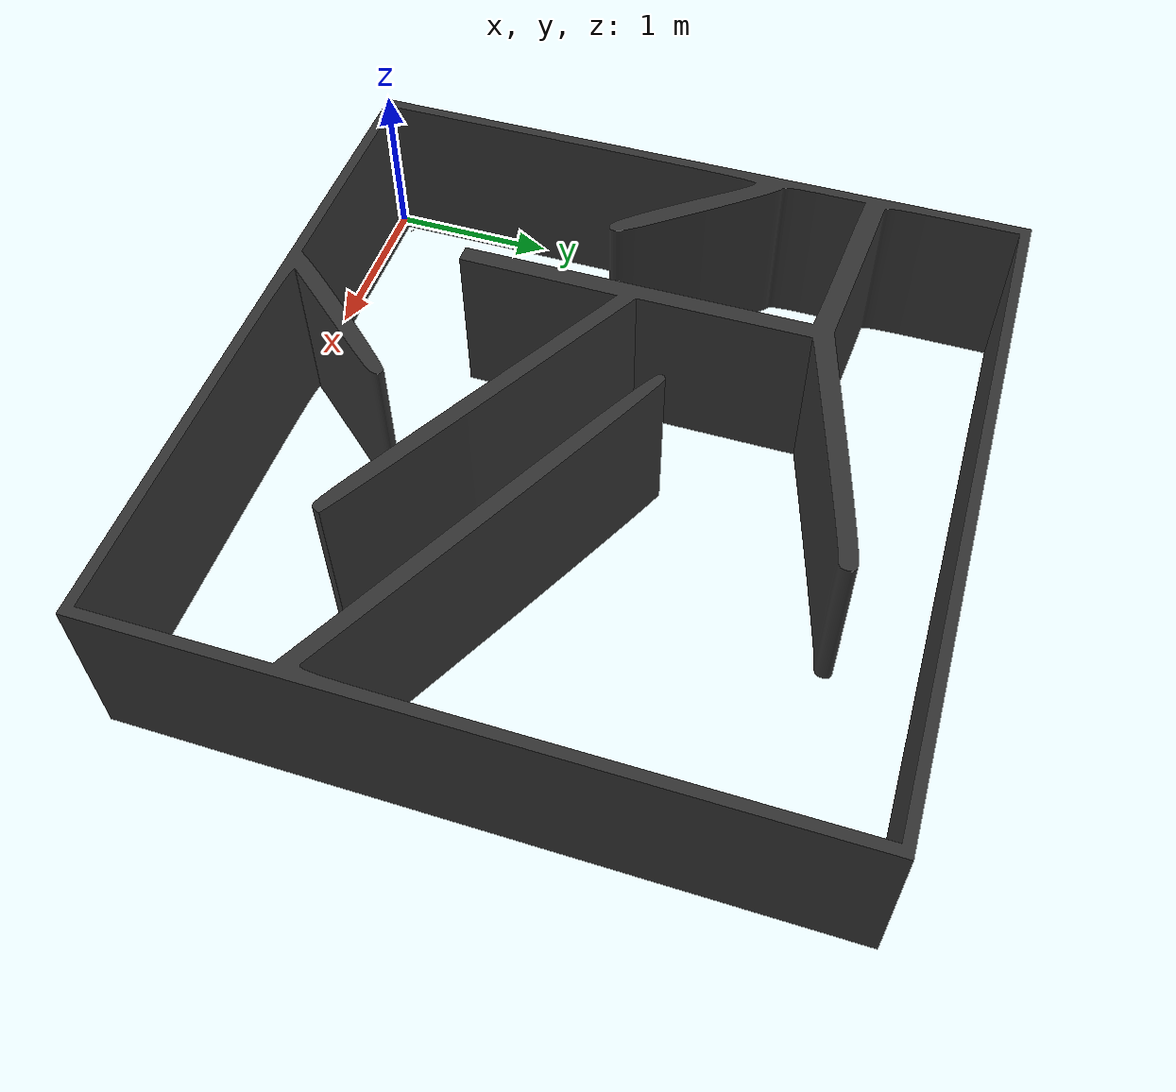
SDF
<?xml version="1.0" encoding="UTF-8"?>
<sdf version="1.6">
  <world name="maze_hard">
    <gravity>0 0 -9.8</gravity>
    <model name="walls">
      <static>1</static>
      <pose frame="">0 0 0 0 0 0</pose>
      <link name="link_d0">
        <inertial>
          <mass>0</mass>
          <inertia>
            <ixx>0.166667</ixx>
            <ixy>0</ixy>
            <ixz>0</ixz>
            <iyy>0.166667</iyy>
            <iyz>0</iyz>
            <izz>0.166667</izz>
          </inertia>
        </inertial>
        <collision concave="yes" name="collision_0">
          <geometry>
            <mesh>
              <scale>4 4 1</scale>
              <uri>meshes/maze_hard.obj</uri>
            </mesh>
          </geometry>
        </collision>
        <visual name="visual">
          <geometry>
            <mesh>
              <scale>4 4 1</scale>
              <uri>meshes/maze_hard.obj</uri>
            </mesh>
          </geometry>
            <material>
          <ambient>0.2 0.2 0.2 1</ambient>
          <diffuse>0.2 0.2 0.2 1</diffuse>
          <specular>0 0 0 0</specular>
          <emissive>0 0 0 0</emissive>
        </material>
        </visual>
      </link>
    </model>

  </world>
</sdf>
